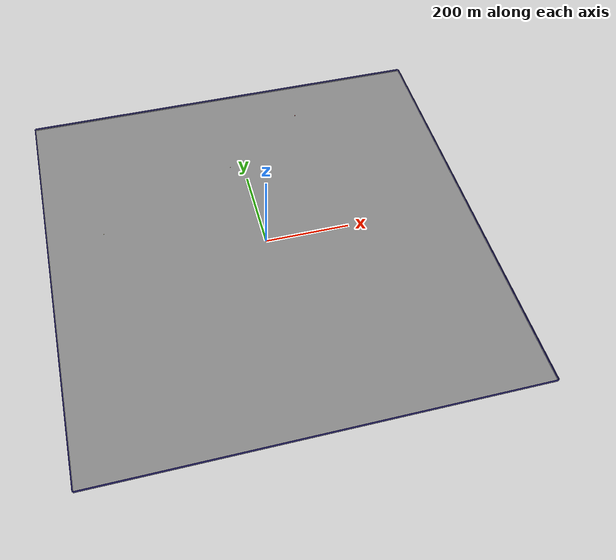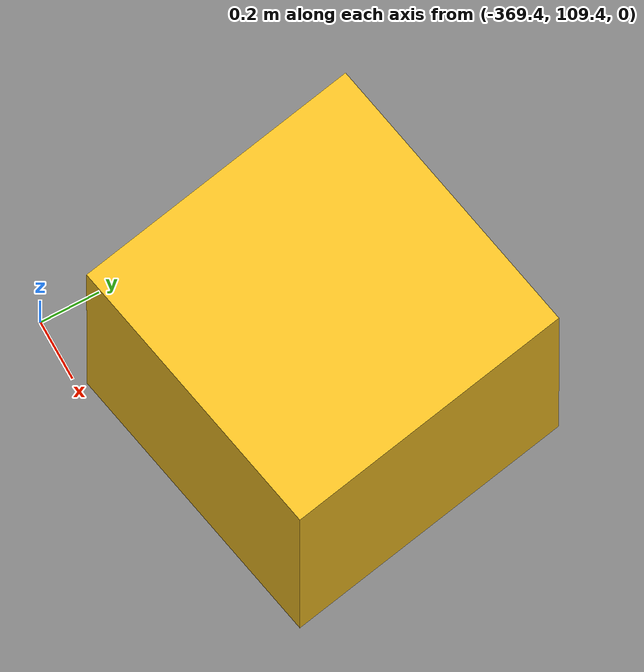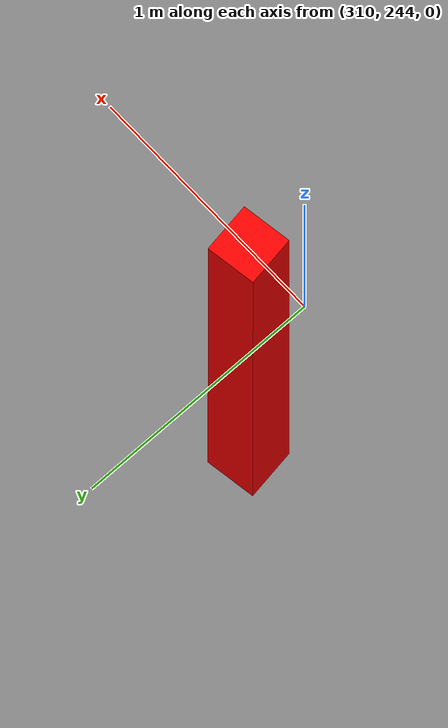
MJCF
<mujoco model="unnamed_model">
  <default>
    <default class="/" />
    <default class="border/" />
    <default class="border_1/" />
    <default class="border_2/" />
    <default class="border_3/" />
    <default class="agentplaceholder/" />
    <default class="placeholder_box/" />
    <default class="tree0/" />
    <default class="tree1/" />
    <default class="stone/" />
    <default class="stone_1/" />
  </default>
  <worldbody>
    <body name="border/">
      <body name="border/border" pos="0 501 2">
        <geom name="border/border_geom" class="border/" type="box" size="500 1 2" rgba="0.035000000000000003 0.016 0.28999999999999998 1" />
      </body>
    </body>
    <body name="border_1/">
      <body name="border_1/border" pos="0 -501 2">
        <geom name="border_1/border_geom" class="border_1/" type="box" size="500 1 2" rgba="0.035000000000000003 0.016 0.28999999999999998 1" />
      </body>
    </body>
    <body name="border_2/">
      <body name="border_2/border" pos="501 0 2">
        <geom name="border_2/border_geom" class="border_2/" type="box" size="1 500 2" rgba="0.035000000000000003 0.016 0.28999999999999998 1" />
      </body>
    </body>
    <body name="border_3/">
      <body name="border_3/border" pos="-501 0 2">
        <geom name="border_3/border_geom" class="border_3/" type="box" size="1 500 2" rgba="0.035000000000000003 0.016 0.28999999999999998 1" />
      </body>
    </body>
    <body euler="0 0 -82.255803481114825" name="agentplaceholder/">
      <joint name="agentplaceholder/boxagent_freeJoint/" class="/" type="free" />
      <body name="agentplaceholder/agentplaceholder" pos="-250 0 3" euler="0 0 0">
        <geom name="agentplaceholder/boxagent_geom" class="agentplaceholder/" type="box" size="0.5 0.5 0.5" rgba="0.94899999999999995 0.74509999999999998 0.1333 1" euler="0 0 0" />
      </body>
    </body>
    <body name="placeholder_box/">
      <body name="placeholder_box/placeholder_box" pos="-368.7704 110.0154 0.5" euler="0 0 -79.151065972580582">
        <geom name="placeholder_box/box_geom" class="placeholder_box/" type="box" size="0.5 0.5 0.5" rgba="0.94899999999999995 0.74509999999999998 0.1333 1" euler="0 0 0" />
      </body>
    </body>
    <body name="tree0/">
      <body name="tree0/tree0" pos="173.37625 392.0865 0.10000000000000001" euler="0 0 147.45387360503491">
        <geom name="tree0/tree_geom" class="tree0/" type="box" size="0.10000000000000001 0.10000000000000001 2" rgba="1 0 0 1" />
      </body>
    </body>
    <body name="tree1/">
      <body name="tree1/tree1" pos="309.7199 244.52109999999993 0.10000000000000001" euler="0 0 -81.269590772276814">
        <geom name="tree1/tree_geom" class="tree1/" type="box" size="0.10000000000000001 0.10000000000000001 2" rgba="1 0 0 1" />
      </body>
    </body>
    <body name="stone/">
      <body name="stone/stone" pos="176.89420000000001 -144.13720000000001 0.10000000000000001" euler="0 0 -145.69783462386116">
        <geom name="stone/stone_geom" class="stone/" type="box" size="0.10000000000000001 0.10000000000000001 2" rgba="1 0 0 1" />
      </body>
    </body>
    <body name="stone_1/">
      <body name="stone_1/stone" pos="294.77139999999997 428.16250000000002 0.10000000000000001" euler="0 0 33.305287669916652">
        <geom name="stone_1/stone_geom" class="stone_1/" type="box" size="0.10000000000000001 0.10000000000000001 2" rgba="1 0 0 1" />
      </body>
    </body>
    <geom name="base_plane" class="/" type="plane" size="500 500 0.10000000000000001" />
  </worldbody>
</mujoco>
